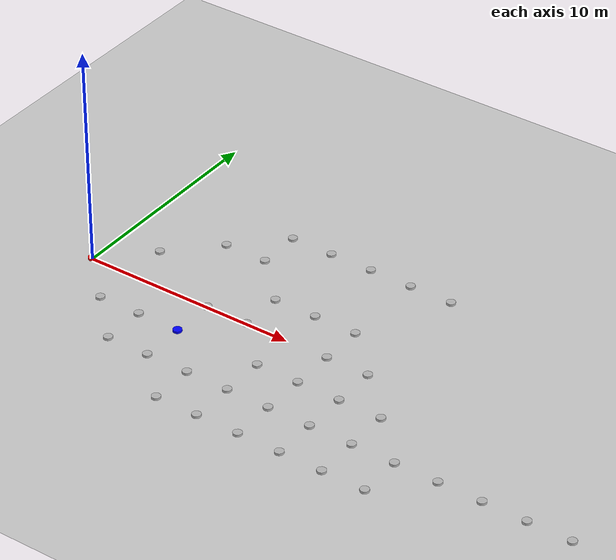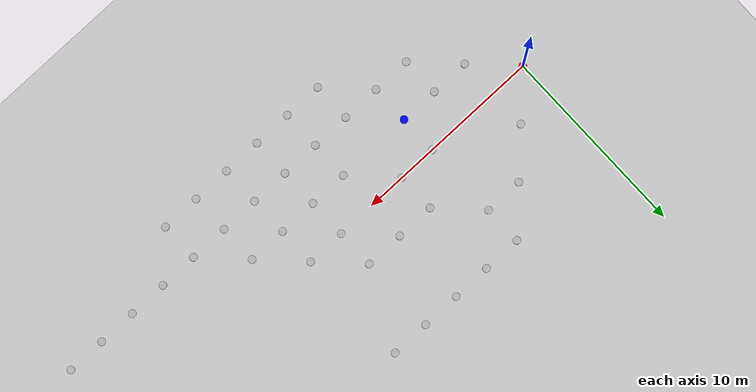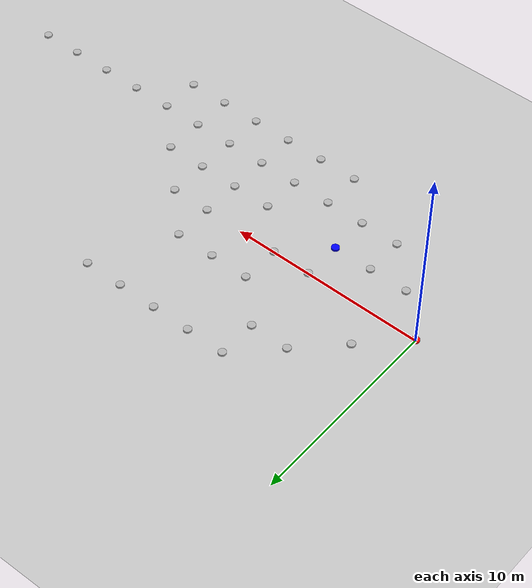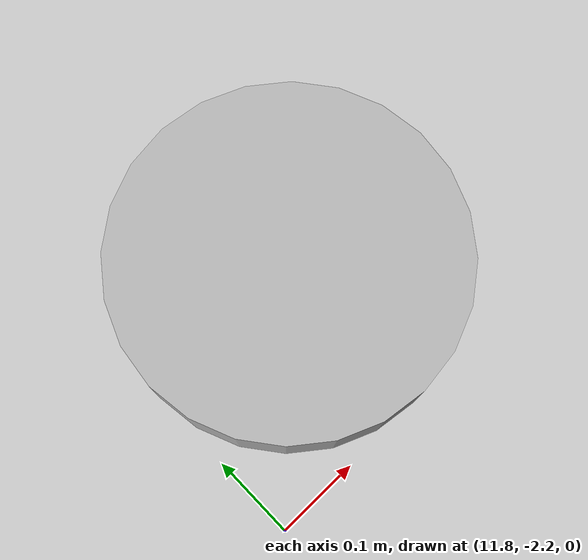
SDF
<?xml version="1.0" ?>
<sdf version="1.9">
  <world name="ethiopia_search">
    <physics name="1ms" type="ignored">
      <max_step_size>0.001</max_step_size>
      <real_time_factor>1.0</real_time_factor>
    </physics>
    <include><uri>https://fuel.gazebosim.org/1.0/OpenRobotics/models/Ground Plane</uri></include>
    <include><uri>https://fuel.gazebosim.org/1.0/OpenRobotics/models/Sun</uri></include>

    <!-- Cities -->
    <model name="Gambella">
      <static>true</static><pose>0 0 0.05 0 0 0</pose>
      <link name="link"><visual name="v"><geometry><cylinder><radius>0.2</radius><length>0.1</length></cylinder></geometry><material><ambient>1 0 0 1</ambient><diffuse>1 0 0 1</diffuse></material></visual></link>
    </model>
    <model name="Dembi_Dollo">
      <static>true</static><pose>2 -2 0.05 0 0 0</pose>
      <link name="link"><visual name="v"><geometry><cylinder><radius>0.2</radius><length>0.1</length></cylinder></geometry></visual></link>
    </model>
    <model name="Gimbi">
      <static>true</static><pose>4 -2 0.05 0 0 0</pose>
      <link name="link"><visual name="v"><geometry><cylinder><radius>0.2</radius><length>0.1</length></cylinder></geometry></visual></link>
    </model>
    <model name="Nekemete">
      <static>true</static><pose>6 0 0.05 0 0 0</pose>
      <link name="link"><visual name="v"><geometry><cylinder><radius>0.2</radius><length>0.1</length></cylinder></geometry></visual></link>
    </model>
    <model name="Gore">
      <static>true</static><pose>2 2 0.05 0 0 0</pose>
      <link name="link"><visual name="v"><geometry><cylinder><radius>0.2</radius><length>0.1</length></cylinder></geometry></visual></link>
    </model>
    <model name="Tepi">
      <static>true</static><pose>4 4 0.05 0 0 0</pose>
      <link name="link"><visual name="v"><geometry><cylinder><radius>0.2</radius><length>0.1</length></cylinder></geometry></visual></link>
    </model>
    <model name="Mezan_Teferi">
      <static>true</static><pose>6 4 0.05 0 0 0</pose>
      <link name="link"><visual name="v"><geometry><cylinder><radius>0.2</radius><length>0.1</length></cylinder></geometry></visual></link>
    </model>
    <model name="Bonga">
      <static>true</static><pose>6 6 0.05 0 0 0</pose>
      <link name="link"><visual name="v"><geometry><cylinder><radius>0.2</radius><length>0.1</length></cylinder></geometry></visual></link>
    </model>
    <model name="Jimma">
      <static>true</static><pose>8 6 0.05 0 0 0</pose>
      <link name="link"><visual name="v"><geometry><cylinder><radius>0.2</radius><length>0.1</length></cylinder></geometry></visual></link>
    </model>
    <model name="Bedelle">
      <static>true</static><pose>8 2 0.05 0 0 0</pose>
      <link name="link"><visual name="v"><geometry><cylinder><radius>0.2</radius><length>0.1</length></cylinder></geometry></visual></link>
    </model>
    <model name="Dawro">
      <static>true</static><pose>10 6 0.05 0 0 0</pose>
      <link name="link"><visual name="v"><geometry><cylinder><radius>0.2</radius><length>0.1</length></cylinder></geometry></visual></link>
    </model>
    <model name="Wolaita_Sodo">
      <static>true</static><pose>12 6 0.05 0 0 0</pose>
      <link name="link"><visual name="v"><geometry><cylinder><radius>0.2</radius><length>0.1</length></cylinder></geometry></visual></link>
    </model>
    <model name="Arba_Minch">
      <static>true</static><pose>14 6 0.05 0 0 0</pose>
      <link name="link"><visual name="v"><geometry><cylinder><radius>0.2</radius><length>0.1</length></cylinder></geometry></visual></link>
    </model>
    <model name="Wolkite">
      <static>true</static><pose>10 2 0.05 0 0 0</pose>
      <link name="link"><visual name="v"><geometry><cylinder><radius>0.2</radius><length>0.1</length></cylinder></geometry></visual></link>
    </model>
    <model name="Worabe">
      <static>true</static><pose>12 2 0.05 0 0 0</pose>
      <link name="link"><visual name="v"><geometry><cylinder><radius>0.2</radius><length>0.1</length></cylinder></geometry></visual></link>
    </model>
    <model name="Hossana">
      <static>true</static><pose>12 0 0.05 0 0 0</pose>
      <link name="link"><visual name="v"><geometry><cylinder><radius>0.2</radius><length>0.1</length></cylinder></geometry></visual></link>
    </model>
    <model name="Buta_Jirra">
      <static>true</static><pose>14 0 0.05 0 0 0</pose>
      <link name="link"><visual name="v"><geometry><cylinder><radius>0.2</radius><length>0.1</length></cylinder></geometry></visual></link>
    </model>
    <model name="Ambo">
      <static>true</static><pose>8 0 0.05 0 0 0</pose>
      <link name="link"><visual name="v"><geometry><cylinder><radius>0.2</radius><length>0.1</length></cylinder></geometry></visual></link>
    </model>
    <model name="Addis_Ababa">
      <static>true</static><pose>6 -2 0.05 0 0 0</pose>
      <link name="link"><visual name="v"><geometry><cylinder><radius>0.2</radius><length>0.1</length></cylinder></geometry><material><ambient>0 0 1 1</ambient><diffuse>0 0 1 1</diffuse></material></visual></link>
    </model>
    <model name="Debre_Birhan">
      <static>true</static><pose>4 -4 0.05 0 0 0</pose>
      <link name="link"><visual name="v"><geometry><cylinder><radius>0.2</radius><length>0.1</length></cylinder></geometry></visual></link>
    </model>
    <model name="Adama">
      <static>true</static><pose>6 -4 0.05 0 0 0</pose>
      <link name="link"><visual name="v"><geometry><cylinder><radius>0.2</radius><length>0.1</length></cylinder></geometry></visual></link>
    </model>
    <model name="Matahara">
      <static>true</static><pose>8 -4 0.05 0 0 0</pose>
      <link name="link"><visual name="v"><geometry><cylinder><radius>0.2</radius><length>0.1</length></cylinder></geometry></visual></link>
    </model>
    <model name="Awash">
      <static>true</static><pose>10 -4 0.05 0 0 0</pose>
      <link name="link"><visual name="v"><geometry><cylinder><radius>0.2</radius><length>0.1</length></cylinder></geometry></visual></link>
    </model>
    <model name="Chiro">
      <static>true</static><pose>12 -4 0.05 0 0 0</pose>
      <link name="link"><visual name="v"><geometry><cylinder><radius>0.2</radius><length>0.1</length></cylinder></geometry></visual></link>
    </model>
    <model name="Dire_Dawa">
      <static>true</static><pose>14 -4 0.05 0 0 0</pose>
      <link name="link"><visual name="v"><geometry><cylinder><radius>0.2</radius><length>0.1</length></cylinder></geometry></visual></link>
    </model>
    <model name="Harar">
      <static>true</static><pose>16 -4 0.05 0 0 0</pose>
      <link name="link"><visual name="v"><geometry><cylinder><radius>0.2</radius><length>0.1</length></cylinder></geometry></visual></link>
    </model>
    <model name="Babile">
      <static>true</static><pose>18 -4 0.05 0 0 0</pose>
      <link name="link"><visual name="v"><geometry><cylinder><radius>0.2</radius><length>0.1</length></cylinder></geometry></visual></link>
    </model>
    <model name="Jigjiga">
      <static>true</static><pose>20 -4 0.05 0 0 0</pose>
      <link name="link"><visual name="v"><geometry><cylinder><radius>0.2</radius><length>0.1</length></cylinder></geometry></visual></link>
    </model>
    <model name="Dega_Habur">
      <static>true</static><pose>22 -4 0.05 0 0 0</pose>
      <link name="link"><visual name="v"><geometry><cylinder><radius>0.2</radius><length>0.1</length></cylinder></geometry></visual></link>
    </model>
    <model name="Kebri_Dehar">
      <static>true</static><pose>24 -4 0.05 0 0 0</pose>
      <link name="link"><visual name="v"><geometry><cylinder><radius>0.2</radius><length>0.1</length></cylinder></geometry></visual></link>
    </model>
    <model name="Gode">
      <static>true</static><pose>26 -4 0.05 0 0 0</pose>
      <link name="link"><visual name="v"><geometry><cylinder><radius>0.2</radius><length>0.1</length></cylinder></geometry></visual></link>
    </model>
    <model name="Batu">
      <static>true</static><pose>10 -2 0.05 0 0 0</pose>
      <link name="link"><visual name="v"><geometry><cylinder><radius>0.2</radius><length>0.1</length></cylinder></geometry></visual></link>
    </model>
    <model name="Shashemene">
      <static>true</static><pose>12 -2 0.05 0 0 0</pose>
      <link name="link"><visual name="v"><geometry><cylinder><radius>0.2</radius><length>0.1</length></cylinder></geometry></visual></link>
    </model>
    <model name="Hawassa">
      <static>true</static><pose>14 -2 0.05 0 0 0</pose>
      <link name="link"><visual name="v"><geometry><cylinder><radius>0.2</radius><length>0.1</length></cylinder></geometry></visual></link>
    </model>
    <model name="Dilla">
      <static>true</static><pose>16 -2 0.05 0 0 0</pose>
      <link name="link"><visual name="v"><geometry><cylinder><radius>0.2</radius><length>0.1</length></cylinder></geometry></visual></link>
    </model>
    <model name="Assella">
      <static>true</static><pose>8 -6 0.05 0 0 0</pose>
      <link name="link"><visual name="v"><geometry><cylinder><radius>0.2</radius><length>0.1</length></cylinder></geometry></visual></link>
    </model>
    <model name="Assasa">
      <static>true</static><pose>10 -6 0.05 0 0 0</pose>
      <link name="link"><visual name="v"><geometry><cylinder><radius>0.2</radius><length>0.1</length></cylinder></geometry></visual></link>
    </model>
    <model name="Dodolla">
      <static>true</static><pose>12 -6 0.05 0 0 0</pose>
      <link name="link"><visual name="v"><geometry><cylinder><radius>0.2</radius><length>0.1</length></cylinder></geometry></visual></link>
    </model>
    <model name="Bale">
      <static>true</static><pose>14 -6 0.05 0 0 0</pose>
      <link name="link"><visual name="v"><geometry><cylinder><radius>0.2</radius><length>0.1</length></cylinder></geometry></visual></link>
    </model>
    <model name="Goba">
      <static>true</static><pose>16 -6 0.05 0 0 0</pose>
      <link name="link"><visual name="v"><geometry><cylinder><radius>0.2</radius><length>0.1</length></cylinder></geometry></visual></link>
    </model>
    <model name="Sof_Oumer">
      <static>true</static><pose>18 -6 0.05 0 0 0</pose>
      <link name="link"><visual name="v"><geometry><cylinder><radius>0.2</radius><length>0.1</length></cylinder></geometry></visual></link>
    </model>
  </world>
</sdf>
